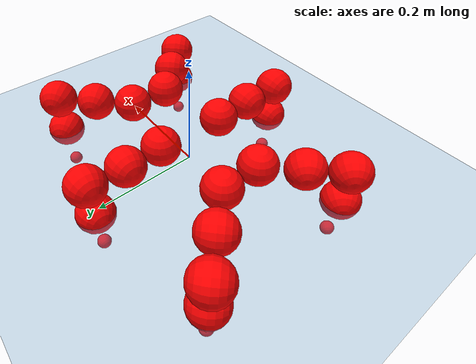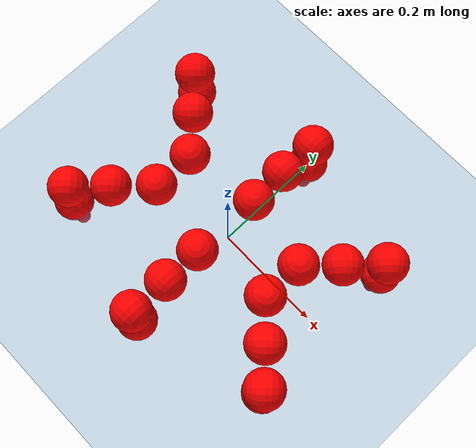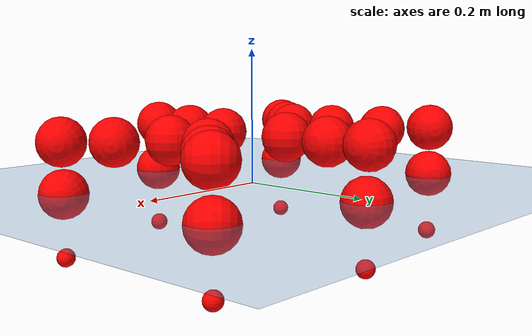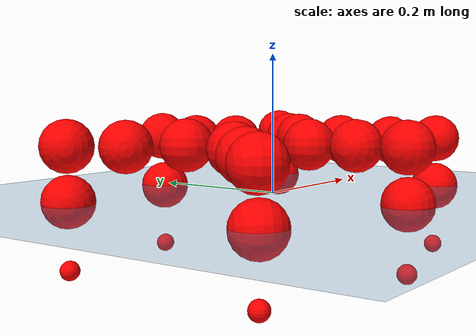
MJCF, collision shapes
<mujoco model="Golem">
  <compiler angle="radian" assetdir="assets" balanceinertia="true" inertiafromgeom="false"/>

  <option timestep="0.005" density="1.2" viscosity="2e-05"/>

  <size nkey="1"/>

  <visual>
    <quality shadowsize="8192"/>
    <map shadowclip="0.5"/>
  </visual>

  <default>
    <default class="/">
      <joint armature="0.01" damping="0.01" frictionloss="0.01"/>
      <geom contype="0" conaffinity="0" group="1" solref="-1000 -80"/>
      <site size="0.01 0.005 0.005" group="5"/>
      <general forcelimited="true" biastype="affine" gainprm="25" biasprm="0 -25 -0.5"/>
      <default class="visual">
        <geom type="mesh" group="2"/>
      </default>
      <default class="collision">
        <geom group="3"/>
      </default>
      <default class="foot">
        <geom size="0.01 0 0" condim="6" group="4" priority="1" solimp="0.015 1 0.01"/>
      </default>
      <default class="reward_collision_sphere">
        <geom group="5" rgba="1 0 0 1"/>
      </default>
    </default>
  </default>

  <asset>
    <texture type="skybox" colorspace="auto" name="//unnamed_texture_0" builtin="gradient" rgb1="0.95 0.95 0.95" rgb2="0.95 0.95 0.95" width="100" height="600"/>
    <texture type="2d" colorspace="auto" name="texplane" builtin="checker" rgb1="0.345 0.575 0.748" rgb2="0.345 0.575 0.748" markrgb="1 1 1" width="512" height="512"/>
    <material name="MatPlane" class="/" texture="texplane" texuniform="true" texrepeat="2 2" specular="0.9"/>
    <mesh name="body" class="/" file="body.stl" scale="0.001 0.001 0.001"/>
    <mesh name="coxa" class="/" file="coxa.stl" scale="0.001 0.001 0.001"/>
    <mesh name="femur" class="/" file="femur.stl" scale="0.001 0.001 0.001"/>
    <mesh name="tibia" class="/" file="tibia.stl" scale="0.001 0.001 0.001"/>
    <mesh name="tarsus" class="/" file="tarsus.stl" scale="0.001 0.001 0.001"/>
  </asset>

  <worldbody>
    <geom name="floor" class="/" size="100 100 0.125" type="plane" group="0" material="MatPlane"/>
    <light name="toplight_shadow" class="/" pos="0 0 5" dir="0.0990148 0.0990148 -0.990148" type="directional" ambient="0.04 0.04 0.04" diffuse="0.55 0.55 0.55" specular="0.12 0.12 0.12"/>
    <light name="toplight_fill" class="/" pos="0 0 5" dir="0.0990148 0.0990148 -0.990148" type="directional" castshadow="false" ambient="0.04 0.04 0.04" diffuse="0.3 0.3 0.3" specular="0.08 0.08 0.08"/>
    <body name="trunk" pos="-0.00281908 0.000546438 -0.00064094" quat="0.999999 0.000362311 -0.000561347 -0.000839564">
      <inertial pos="0.00121332 0.00143708 -6.54005e-05" quat="0.999924 0.00356367 -0.00905422 0.00761499" mass="2.63095" diaginertia="0.00453557 0.00176756 0.0190674"/>
      <joint name="//unnamed_joint_0" type="free"/>
      <geom name="//unnamed_geom_1" class="/" pos="0 0 0.0733195" quat="1 0 0 0" type="mesh" rgba="0.9 0.9 0.9 1" mesh="body"/>
      <site name="imu" class="/" pos="0.109955 0.0134334 0.103375" size="0.00903966"/>
      <camera name="track" class="/" pos="0 -1.41408 0" quat="0.707107 0.707107 0 0" mode="trackcom"/>
      <camera name="ego_camera" class="/" pos="0.111701 0 0.114562" quat="-0.5 -0.5 0.5 0.5"/>
      <body name="coxa_RR" pos="-0.154244 -0.0561353 0.0751731" quat="0.383784 0.00027466 0.000431805 -0.923423">
        <inertial pos="0.00269398 0.00189819 0.00224855" quat="0.99997 -0.000935874 0.00446041 -0.00628213" mass="0.155754" diaginertia="0.00483512 0.00184706 0.0201508"/>
        <joint name="coxa_joint_RR" class="/" pos="0 0 0" axis="8.2773e-05 -0.000884408 -1" range="-3.14436 3.10679" armature="0.00983935" damping="0.0190781" frictionloss="0.00893882"/>
        <geom name="//unnamed_geom_2" class="/" type="mesh" rgba="0.2 0.2 0.2 1" mesh="coxa"/>
        <geom name="//unnamed_geom_3" class="reward_collision_sphere" size="0.0361586" pos="-0.0257772 0 0"/>
        <body name="femur_RR" pos="0.0531754 0.00278338 -0.00178861" quat="0.501201 -0.49936 0.499314 0.500122">
          <inertial pos="0.00244742 0.00162691 -0.000517398" quat="0.999923 -0.00489424 -0.000446068 0.0113538" mass="0.1476" diaginertia="0.00471949 0.0017771 0.0196694"/>
          <joint name="femur_joint_RR" class="/" pos="0 0 0" axis="0.00282711 -0.00333609 -0.99999" stiffness="0.0113191" range="-3.08852 3.08519" armature="0.00921533" damping="0.0175537" frictionloss="0.00981724"/>
          <geom name="//unnamed_geom_4" class="/" type="mesh" rgba="0.9 0.9 0.9 1" mesh="femur"/>
          <geom name="//unnamed_geom_5" class="reward_collision_sphere" size="0.0361586"/>
          <body name="tibia_RR" pos="0.00137854 -0.0743929 0.00322412" quat="4.81945e-05 0.999999 0.000191842 0.00127835">
            <inertial pos="-0.00285592 -0.00123796 -0.000650791" quat="0.999959 -0.00712131 0.00550945 -0.000565204" mass="0.151485" diaginertia="0.00480635 0.00179789 0.0205382"/>
            <joint name="tibia_joint_RR" class="/" pos="0 0 0" axis="0.0133438 -0.00516361 0.999898" stiffness="0.011004" range="-3.17077 3.13604" armature="0.00885863" damping="0.000264022" frictionloss="0.00912971"/>
            <geom name="//unnamed_geom_6" class="/" type="mesh" rgba="0.2 0.2 0.2 1" mesh="tibia"/>
            <geom name="//unnamed_geom_7" class="reward_collision_sphere" size="0.0361586"/>
            <body name="tarsus_RR" pos="0.073621 0.00279932 -0.000315263" quat="0.999999 -0.0011632 0.000181003 -0.000384509">
              <inertial pos="0.050451 0.00127919 -0.0014772" quat="0.501213 0.501214 0.497893 0.499673" mass="0.15194" diaginertia="0.00485597 0.00183688 0.0201572"/>
              <joint name="tarsus_joint_RR" class="/" pos="0 0 0" axis="-0.00487281 -0.00287564 0.999984" range="-3.13221 3.1436" armature="0.00861465" damping="0.0349791" frictionloss="0.00778654"/>
              <geom name="//unnamed_geom_8" class="/" type="mesh" rgba="0.9 0.9 0.9 1" mesh="tarsus"/>
              <geom name="foot_1" class="foot" size="0.00924739" pos="0.0962349 0 0" quat="0 -0.707107 0 0.707107"/>
              <geom name="//unnamed_geom_10" class="reward_collision_sphere" size="0.0361586"/>
              <geom name="//unnamed_geom_11" class="reward_collision_sphere" size="0.0135595" pos="0.0923684 0 0"/>
              <site name="foot_1" class="foot" pos="0.0962349 0 0" quat="0 -0.707107 0 0.707107" size="0.00903966"/>
            </body>
          </body>
        </body>
      </body>
      <body name="coxa_RM" pos="-0.00253283 -0.091957 0.0737899" quat="0.707016 -0.000331018 -0.000417958 -0.707198">
        <inertial pos="-0.00242366 -0.000568633 0.000489055" quat="1 -0.000142904 0.000862459 4.24589e-05" mass="0.152237" diaginertia="0.00469558 0.00186859 0.0202853"/>
        <joint name="coxa_joint_RM" class="/" pos="0 0 0" axis="0.000526487 0.000361658 -1" range="-3.08368 3.13109" armature="0.0103809" damping="0.0099682" frictionloss="0.00890404"/>
        <geom name="//unnamed_geom_12" class="/" type="mesh" rgba="0.2 0.2 0.2 1" mesh="coxa"/>
        <geom name="//unnamed_geom_13" class="reward_collision_sphere" size="0.0361586" pos="-0.0257772 0 0"/>
        <body name="femur_RM" pos="0.0482129 0.00159397 0.00144134" quat="0.498925 -0.500756 0.500217 0.500101">
          <inertial pos="-0.000914209 -0.00266049 0.00140722" quat="0.999955 -0.00638564 0.00590022 0.00374971" mass="0.148526" diaginertia="0.00447358 0.00172296 0.0193732"/>
          <joint name="femur_joint_RM" class="/" pos="0 0 0" axis="1.33337e-05 -0.000999098 -1" stiffness="0.000253235" range="-3.17505 3.13232" armature="0.00852498" damping="0.0137871" frictionloss="0.00909356"/>
          <geom name="//unnamed_geom_14" class="/" type="mesh" rgba="0.9 0.9 0.9 1" mesh="femur"/>
          <geom name="//unnamed_geom_15" class="reward_collision_sphere" size="0.0361586"/>
          <body name="tibia_RM" pos="-0.0014221 -0.0760997 8.52381e-05" quat="-0.000374679 1 -0.000318414 0.000632025">
            <inertial pos="-0.00283958 -0.000585517 -0.000181657" quat="0.999901 0.00884961 -0.00572101 0.00927148" mass="0.147921" diaginertia="0.00475714 0.00173531 0.019568"/>
            <joint name="tibia_joint_RM" class="/" pos="0 0 0" axis="-0.00264022 0.00163371 0.999995" range="-3.13706 3.13313" armature="0.00949621" damping="0" frictionloss="0.00892936"/>
            <geom name="//unnamed_geom_16" class="/" type="mesh" rgba="0.2 0.2 0.2 1" mesh="tibia"/>
            <geom name="//unnamed_geom_17" class="reward_collision_sphere" size="0.0361586"/>
            <body name="tarsus_RM" pos="0.0747585 0.000126597 -0.00242285" quat="0.999999 -0.000210245 0.000401314 -0.00108737">
              <inertial pos="0.0511746 -0.000866672 2.25558e-05" quat="0.504187 0.500874 0.496775 0.498132" mass="0.146058" diaginertia="0.00475079 0.00174587 0.02074"/>
              <joint name="tarsus_joint_RM" class="/" pos="0 0 0" axis="0.00496861 0.0128448 0.999905" range="-3.19587 3.17281" armature="0.00782229" damping="0.00757262" frictionloss="0.00827591"/>
              <geom name="//unnamed_geom_18" class="/" type="mesh" rgba="0.9 0.9 0.9 1" mesh="tarsus"/>
              <geom name="foot_2" class="foot" size="0.00923591" pos="0.0962349 0 0" quat="0 -0.707107 0 0.707107"/>
              <geom name="//unnamed_geom_20" class="reward_collision_sphere" size="0.0361586"/>
              <geom name="//unnamed_geom_21" class="reward_collision_sphere" size="0.0135595" pos="0.0923684 0 0"/>
              <site name="foot_2" class="foot" pos="0.0962349 0 0" quat="0 -0.707107 0 0.707107" size="0.00903966"/>
            </body>
          </body>
        </body>
      </body>
      <body name="coxa_RF" pos="0.150724 -0.0559292 0.0732017" quat="0.924022 0.000691255 0.000925945 -0.382337">
        <inertial pos="0.00240317 0.00226118 1.63516e-05" quat="1 -0.000150503 0.00065676 -0.000478605" mass="0.14652" diaginertia="0.00469973 0.00171055 0.0198369"/>
        <joint name="coxa_joint_RF" class="/" pos="0 0 0" axis="0.0121455 0.00744822 -0.999899" stiffness="0.00253247" range="-3.09593 3.09438" armature="0.0083248" damping="0.0322925" frictionloss="0.00857063"/>
        <geom name="//unnamed_geom_22" class="/" type="mesh" rgba="0.2 0.2 0.2 1" mesh="coxa"/>
        <geom name="//unnamed_geom_23" class="reward_collision_sphere" size="0.0361586" pos="-0.0257772 0 0"/>
        <body name="femur_RF" pos="0.0532785 0.000322761 -0.00220642" quat="0.49973 -0.499159 0.500676 0.500434">
          <inertial pos="0.000526865 -0.00275426 0.00200262" quat="0.999912 -0.0128433 0.00302114 0.00100512" mass="0.148944" diaginertia="0.00458154 0.00171924 0.0187003"/>
          <joint name="femur_joint_RF" class="/" pos="0 0 0" axis="0.00473137 -0.00726996 -0.999962" range="-3.12 3.08723" armature="0.00989718" damping="0.00429307" frictionloss="0.0103101"/>
          <geom name="//unnamed_geom_24" class="/" type="mesh" rgba="0.9 0.9 0.9 1" mesh="femur"/>
          <geom name="//unnamed_geom_25" class="reward_collision_sphere" size="0.0361586"/>
          <body name="tibia_RF" pos="-0.00125219 -0.073924 -0.000540683" quat="0.000983272 0.999999 0.00032534 0.000321373">
            <inertial pos="5.6617e-06 0.000282795 -0.00045675" quat="0.999903 -0.00462156 0.0130549 -0.00139666" mass="0.143467" diaginertia="0.00447358 0.0017115 0.0194195"/>
            <joint name="tibia_joint_RF" class="/" pos="0 0 0" axis="-0.00247827 0.00146462 0.999996" range="-3.14317 3.18401" armature="0.0086179" damping="0" frictionloss="0.00956776"/>
            <geom name="//unnamed_geom_26" class="/" type="mesh" rgba="0.2 0.2 0.2 1" mesh="tibia"/>
            <geom name="//unnamed_geom_27" class="reward_collision_sphere" size="0.0361586"/>
            <body name="tarsus_RF" pos="0.0747711 -0.000843757 0.000618273" quat="1 0.000444104 0.000743949 -0.000169518">
              <inertial pos="0.0517675 0.000101831 -0.00067824" quat="0.511821 0.49549 0.49576 0.496739" mass="0.142236" diaginertia="0.00455694 0.0017242 0.01847"/>
              <joint name="tarsus_joint_RF" class="/" pos="0 0 0" axis="0.00258338 -0.00395903 0.999989" range="-3.14543 3.15571" armature="0.00895358" damping="0.00719626" frictionloss="0.0102479"/>
              <geom name="//unnamed_geom_28" class="/" type="mesh" rgba="0.9 0.9 0.9 1" mesh="tarsus"/>
              <geom name="foot_3" class="foot" size="0.0098354" pos="0.0962349 0 0" quat="0 -0.707107 0 0.707107"/>
              <geom name="//unnamed_geom_30" class="reward_collision_sphere" size="0.0361586"/>
              <geom name="//unnamed_geom_31" class="reward_collision_sphere" size="0.0135595" pos="0.0923684 0 0"/>
              <site name="foot_3" class="foot" pos="0.0962349 0 0" quat="0 -0.707107 0 0.707107" size="0.00903966"/>
            </body>
          </body>
        </body>
      </body>
      <body name="coxa_LR" pos="-0.155261 0.0602489 0.0765969" quat="0.382112 -0.000464714 -0.000849496 0.924115">
        <inertial pos="0.000365869 -2.32857e-05 0.0013838" quat="1 -6.9589e-05 0.000464772 0.000139161" mass="0.143852" diaginertia="0.00452811 0.00174478 0.0192936"/>
        <joint name="coxa_joint_LR" class="/" pos="0 0 0" axis="0.00111735 -0.0144082 -0.999896" range="-3.0851 3.14048" armature="0.00808933" damping="0.0191905" frictionloss="0.00920847"/>
        <geom name="//unnamed_geom_32" class="/" type="mesh" rgba="0.2 0.2 0.2 1" mesh="coxa"/>
        <geom name="//unnamed_geom_33" class="reward_collision_sphere" size="0.0361586" pos="-0.0257772 0 0"/>
        <body name="femur_LR" pos="0.0541516 -0.00188875 -0.00145057" quat="0.49933 -0.500353 0.499832 0.500485">
          <inertial pos="8.71509e-05 0.000928212 0.00202564" quat="0.999963 -0.00306369 0.00222112 -0.00774074" mass="0.15041" diaginertia="0.00482667 0.00171549 0.0204258"/>
          <joint name="femur_joint_LR" class="/" pos="0 0 0" axis="-0.00166706 0.00281429 0.999995" range="-3.189 3.18875" armature="0.00909963" damping="0" frictionloss="0.00871905"/>
          <geom name="//unnamed_geom_34" class="/" type="mesh" rgba="0.9 0.9 0.9 1" mesh="femur"/>
          <geom name="//unnamed_geom_35" class="reward_collision_sphere" size="0.0361586"/>
          <body name="tibia_LR" pos="-0.00184724 -0.0765108 -0.00157986" quat="-3.60834e-06 1 -7.5013e-05 -0.000187931">
            <inertial pos="-0.00174521 -0.000751307 -0.00216826" quat="0.99999 -0.00185249 3.36682e-05 0.00417606" mass="0.147816" diaginertia="0.00475947 0.00184554 0.0192708"/>
            <joint name="tibia_joint_LR" class="/" pos="0 0 0" axis="-0.00142688 0.00246837 -0.999996" range="-3.09441 3.19458" armature="0.00794462" damping="0.00649432" frictionloss="0.00842781"/>
            <geom name="//unnamed_geom_36" class="/" type="mesh" rgba="0.2 0.2 0.2 1" mesh="tibia"/>
            <geom name="//unnamed_geom_37" class="reward_collision_sphere" size="0.0361586"/>
            <body name="tarsus_LR" pos="0.0736922 -0.000659052 0.000850447" quat="1 0.000261946 -0.000124492 -5.28188e-06">
              <inertial pos="0.0516241 0.00117619 0.000679571" quat="0.49846 0.501937 0.498484 0.501109" mass="0.148323" diaginertia="0.00467595 0.00188491 0.0203113"/>
              <joint name="tarsus_joint_LR" class="/" pos="0 0 0" axis="-0.00415534 -0.0105374 -0.999936" stiffness="0.0083813" range="-3.12451 3.08501" armature="0.00924243" damping="0.0278087" frictionloss="0.0103065"/>
              <geom name="//unnamed_geom_38" class="/" type="mesh" rgba="0.9 0.9 0.9 1" mesh="tarsus"/>
              <geom name="foot_4" class="foot" size="0.00938346" pos="0.0962349 0 0" quat="0.707107 0 -0.707107 0"/>
              <geom name="//unnamed_geom_40" class="reward_collision_sphere" size="0.0361586"/>
              <geom name="//unnamed_geom_41" class="reward_collision_sphere" size="0.0135595" pos="0.0923684 0 0"/>
              <site name="foot_4" class="foot" pos="0.0962349 0 0" quat="0.707107 0 -0.707107 0" size="0.00903966"/>
            </body>
          </body>
        </body>
      </body>
      <body name="coxa_LM" pos="-0.000131584 0.0901754 0.0750239" quat="0.707009 -0.000162904 -0.00103633 0.707204">
        <inertial pos="0.00254953 0.00184238 0.00130552" quat="1 8.99678e-05 -0.000689398 5.2027e-06" mass="0.147856" diaginertia="0.0047365 0.00177401 0.0198507"/>
        <joint name="coxa_joint_LM" class="/" pos="0 0 0" axis="0.000373702 -2.36319e-05 -1" range="-3.08585 3.0837" armature="0.0102554" damping="0.00717439" frictionloss="0.0102258"/>
        <geom name="//unnamed_geom_42" class="/" type="mesh" rgba="0.2 0.2 0.2 1" mesh="coxa"/>
        <geom name="//unnamed_geom_43" class="reward_collision_sphere" size="0.0361586" pos="-0.0257772 0 0"/>
        <body name="femur_LM" pos="0.0473598 0.00288187 -0.00132459" quat="0.500868 -0.49942 0.499755 0.499956">
          <inertial pos="-0.00273511 0.00240204 0.000547629" quat="0.999902 -0.00927529 0.00267182 -0.0100925" mass="0.148065" diaginertia="0.00486669 0.00171203 0.01984"/>
          <joint name="femur_joint_LM" class="/" pos="0 0 0" axis="0.0025787 -0.00454803 0.999986" stiffness="0.0113106" range="-3.10647 3.13654" armature="0.00813372" damping="0" frictionloss="0.00861547"/>
          <geom name="//unnamed_geom_44" class="/" type="mesh" rgba="0.9 0.9 0.9 1" mesh="femur"/>
          <geom name="//unnamed_geom_45" class="reward_collision_sphere" size="0.0361586"/>
          <body name="tibia_LM" pos="-0.00118743 -0.0720679 -0.00255562" quat="6.2201e-05 1 -9.34631e-05 0.000284617">
            <inertial pos="0.0010033 0.00158995 0.00239574" quat="0.999982 0.00213932 0.00409366 -0.00375028" mass="0.144833" diaginertia="0.00450279 0.00175663 0.0194197"/>
            <joint name="tibia_joint_LM" class="/" pos="0 0 0" axis="0.0140992 -0.00329371 -0.999895" range="-3.16518 3.19497" armature="0.00920016" damping="0" frictionloss="0.00782851"/>
            <geom name="//unnamed_geom_46" class="/" type="mesh" rgba="0.2 0.2 0.2 1" mesh="tibia"/>
            <geom name="//unnamed_geom_47" class="reward_collision_sphere" size="0.0361586"/>
            <body name="tarsus_LM" pos="0.0778681 -0.00295189 0.000730653" quat="1 6.62422e-05 9.33692e-05 0.000202225">
              <inertial pos="0.0517953 5.84836e-05 0.000165381" quat="0.492985 0.497479 0.499627 0.509758" mass="0.155843" diaginertia="0.00496248 0.00179812 0.0196945"/>
              <joint name="tarsus_joint_LM" class="/" pos="0 0 0" axis="-0.0057472 0.0077405 -0.999954" stiffness="0.0115856" range="-3.14293 3.08288" armature="0.00915202" damping="0.0175437" frictionloss="0.0090571"/>
              <geom name="//unnamed_geom_48" class="/" type="mesh" rgba="0.9 0.9 0.9 1" mesh="tarsus"/>
              <geom name="foot_5" class="foot" size="0.00962127" pos="0.0962349 0 0" quat="0.707107 0 -0.707107 0"/>
              <geom name="//unnamed_geom_50" class="reward_collision_sphere" size="0.0361586"/>
              <geom name="//unnamed_geom_51" class="reward_collision_sphere" size="0.0135595" pos="0.0923684 0 0"/>
              <site name="foot_5" class="foot" pos="0.0962349 0 0" quat="0.707107 0 -0.707107 0" size="0.00903966"/>
            </body>
          </body>
        </body>
      </body>
      <body name="coxa_LF" pos="0.151667 0.057508 0.0734572" quat="0.923901 -0.000306476 -4.0641e-05 0.382632">
        <inertial pos="0.000308259 0.000282818 0.000164493" quat="1 -7.56082e-05 6.13944e-05 9.66736e-06" mass="0.144627" diaginertia="0.00456918 0.00178316 0.0198791"/>
        <joint name="coxa_joint_LF" class="/" pos="0 0 0" axis="-0.00210262 -0.00783061 -0.999967" range="-3.16135 3.09769" armature="0.00943389" damping="0.0136273" frictionloss="0.00907088"/>
        <geom name="//unnamed_geom_52" class="/" type="mesh" rgba="0.2 0.2 0.2 1" mesh="coxa"/>
        <geom name="//unnamed_geom_53" class="reward_collision_sphere" size="0.0361586" pos="-0.0257772 0 0"/>
        <body name="femur_LF" pos="0.0487953 0.00197851 -0.00183017" quat="0.500258 -0.500223 0.499636 0.499882">
          <inertial pos="-0.00268288 0.00181755 -0.000587376" quat="1 0.00013559 -0.000608541 0.000638605" mass="0.14736" diaginertia="0.00457739 0.00164582 0.0187881"/>
          <joint name="femur_joint_LF" class="/" pos="0 0 0" axis="-0.00929041 -0.0112877 0.999893" stiffness="0.008329" range="-3.1445 3.09053" armature="0.00776592" damping="0" frictionloss="0.00893737"/>
          <geom name="//unnamed_geom_54" class="/" type="mesh" rgba="0.9 0.9 0.9 1" mesh="femur"/>
          <geom name="//unnamed_geom_55" class="reward_collision_sphere" size="0.0361586"/>
          <body name="tibia_LF" pos="-0.00175226 -0.0753176 0.00374227" quat="-0.000104583 1 -6.61483e-05 0.00010057">
            <inertial pos="0.000968634 0.00246324 -0.000823645" quat="0.999929 0.0104807 0.00139378 -0.00548722" mass="0.145478" diaginertia="0.00465426 0.00180471 0.0200086"/>
            <joint name="tibia_joint_LF" class="/" pos="0 0 0" axis="0.00223144 0.000674203 -0.999997" stiffness="0.00258144" range="-3.13694 3.08988" armature="0.00833112" damping="0" frictionloss="0.00918622"/>
            <geom name="//unnamed_geom_56" class="/" type="mesh" rgba="0.2 0.2 0.2 1" mesh="tibia"/>
            <geom name="//unnamed_geom_57" class="reward_collision_sphere" size="0.0361586"/>
            <body name="tarsus_LF" pos="0.0771937 0.00138709 -0.00102445" quat="1 -0.000329319 0.000698469 0.000302459">
              <inertial pos="0.0544751 -0.00230432 -0.00111365" quat="0.499822 0.501865 0.497647 0.500657" mass="0.141183" diaginertia="0.00448726 0.00170785 0.0192035"/>
              <joint name="tarsus_joint_LF" class="/" pos="0 0 0" axis="0.0105303 -0.00685009 -0.999921" range="-3.08721 3.11762" armature="0.00869715" damping="0.0193741" frictionloss="0.00901268"/>
              <geom name="//unnamed_geom_58" class="/" type="mesh" rgba="0.9 0.9 0.9 1" mesh="tarsus"/>
              <geom name="foot_6" class="foot" size="0.00802953" pos="0.0962349 0 0" quat="0.707107 0 -0.707107 0"/>
              <geom name="//unnamed_geom_60" class="reward_collision_sphere" size="0.0361586"/>
              <geom name="//unnamed_geom_61" class="reward_collision_sphere" size="0.0135595" pos="0.0923684 0 0"/>
              <site name="foot_6" class="foot" pos="0.0962349 0 0" quat="0.707107 0 -0.707107 0" size="0.00903966"/>
            </body>
          </body>
        </body>
      </body>
    </body>
  </worldbody>

  <contact>
    <pair class="/" geom1="floor" geom2="foot_1" name="//unnamed_contact_0"/>
    <pair class="/" geom1="floor" geom2="foot_2" name="//unnamed_contact_1"/>
    <pair class="/" geom1="floor" geom2="foot_3" name="//unnamed_contact_2"/>
    <pair class="/" geom1="floor" geom2="foot_4" name="//unnamed_contact_3"/>
    <pair class="/" geom1="floor" geom2="foot_5" name="//unnamed_contact_4"/>
    <pair class="/" geom1="floor" geom2="foot_6" name="//unnamed_contact_5"/>
  </contact>

  <actuator>
    <general name="coxa_joint_RR" class="/" joint="coxa_joint_RR" forcerange="-6.33841 6.33841" gainprm="22.7478" biasprm="0 -22.7478 -0.435813"/>
    <general name="femur_joint_RR" class="/" joint="femur_joint_RR" forcerange="-6.60502 6.60502" gainprm="22.7478" biasprm="0 -22.7478 -0.435813"/>
    <general name="tibia_joint_RR" class="/" joint="tibia_joint_RR" forcerange="-6.4884 6.4884" gainprm="22.7478" biasprm="0 -22.7478 -0.435813"/>
    <general name="tarsus_joint_RR" class="/" joint="tarsus_joint_RR" forcerange="-6.50443 6.50443" gainprm="22.7478" biasprm="0 -22.7478 -0.435813"/>
    <general name="coxa_joint_RM" class="/" joint="coxa_joint_RM" forcerange="-6.4161 6.4161" gainprm="22.7478" biasprm="0 -22.7478 -0.435813"/>
    <general name="femur_joint_RM" class="/" joint="femur_joint_RM" forcerange="-5.90888 5.90888" gainprm="22.7478" biasprm="0 -22.7478 -0.435813"/>
    <general name="tibia_joint_RM" class="/" joint="tibia_joint_RM" forcerange="-6.65073 6.65073" gainprm="22.7478" biasprm="0 -22.7478 -0.435813"/>
    <general name="tarsus_joint_RM" class="/" joint="tarsus_joint_RM" forcerange="-6.90649 6.90649" gainprm="22.7478" biasprm="0 -22.7478 -0.435813"/>
    <general name="coxa_joint_RF" class="/" joint="coxa_joint_RF" forcerange="-5.92557 5.92557" gainprm="22.7478" biasprm="0 -22.7478 -0.435813"/>
    <general name="femur_joint_RF" class="/" joint="femur_joint_RF" forcerange="-5.90275 5.90275" gainprm="22.7478" biasprm="0 -22.7478 -0.435813"/>
    <general name="tibia_joint_RF" class="/" joint="tibia_joint_RF" forcerange="-7.29614 7.29614" gainprm="22.7478" biasprm="0 -22.7478 -0.435813"/>
    <general name="tarsus_joint_RF" class="/" joint="tarsus_joint_RF" forcerange="-7.06555 7.06555" gainprm="22.7478" biasprm="0 -22.7478 -0.435813"/>
    <general name="coxa_joint_LR" class="/" joint="coxa_joint_LR" forcerange="-6.86336 6.86336" gainprm="22.7478" biasprm="0 -22.7478 -0.435813"/>
    <general name="femur_joint_LR" class="/" joint="femur_joint_LR" forcerange="-6.00069 6.00069" gainprm="22.7478" biasprm="0 -22.7478 -0.435813"/>
    <general name="tibia_joint_LR" class="/" joint="tibia_joint_LR" forcerange="-6.05098 6.05098" gainprm="22.7478" biasprm="0 -22.7478 -0.435813"/>
    <general name="tarsus_joint_LR" class="/" joint="tarsus_joint_LR" forcerange="-7.07542 7.07542" gainprm="22.7478" biasprm="0 -22.7478 -0.435813"/>
    <general name="coxa_joint_LM" class="/" joint="coxa_joint_LM" forcerange="-7.16631 7.16631" gainprm="22.7478" biasprm="0 -22.7478 -0.435813"/>
    <general name="femur_joint_LM" class="/" joint="femur_joint_LM" forcerange="-6.72489 6.72489" gainprm="22.7478" biasprm="0 -22.7478 -0.435813"/>
    <general name="tibia_joint_LM" class="/" joint="tibia_joint_LM" forcerange="-6.67817 6.67817" gainprm="22.7478" biasprm="0 -22.7478 -0.435813"/>
    <general name="tarsus_joint_LM" class="/" joint="tarsus_joint_LM" forcerange="-6.18819 6.18819" gainprm="22.7478" biasprm="0 -22.7478 -0.435813"/>
    <general name="coxa_joint_LF" class="/" joint="coxa_joint_LF" forcerange="-6.63912 6.63912" gainprm="22.7478" biasprm="0 -22.7478 -0.435813"/>
    <general name="femur_joint_LF" class="/" joint="femur_joint_LF" forcerange="-6.62292 6.62292" gainprm="22.7478" biasprm="0 -22.7478 -0.435813"/>
    <general name="tibia_joint_LF" class="/" joint="tibia_joint_LF" forcerange="-6.89905 6.89905" gainprm="22.7478" biasprm="0 -22.7478 -0.435813"/>
    <general name="tarsus_joint_LF" class="/" joint="tarsus_joint_LF" forcerange="-6.85981 6.85981" gainprm="22.7478" biasprm="0 -22.7478 -0.435813"/>
  </actuator>

  <sensor>
    <gyro site="imu" name="imu_angular_velocity"/>
    <velocimeter site="imu" name="imu_linear_velocity"/>
    <framelinvel objtype="site" objname="foot_1" name="foot_1_global_linear_velocity"/>
    <framelinvel objtype="site" objname="foot_2" name="foot_2_global_linear_velocity"/>
    <framelinvel objtype="site" objname="foot_3" name="foot_3_global_linear_velocity"/>
    <framelinvel objtype="site" objname="foot_4" name="foot_4_global_linear_velocity"/>
    <framelinvel objtype="site" objname="foot_5" name="foot_5_global_linear_velocity"/>
    <framelinvel objtype="site" objname="foot_6" name="foot_6_global_linear_velocity"/>
  </sensor>

  <keyframe>
    <key name="home" qpos="0 0 0.1457 1 0 0 0 0 0 0 0 0 0 0 0 0 0 0 0 0 0 0 0 0 0 0 0 0 0 0 0"/>
  </keyframe>
</mujoco>
